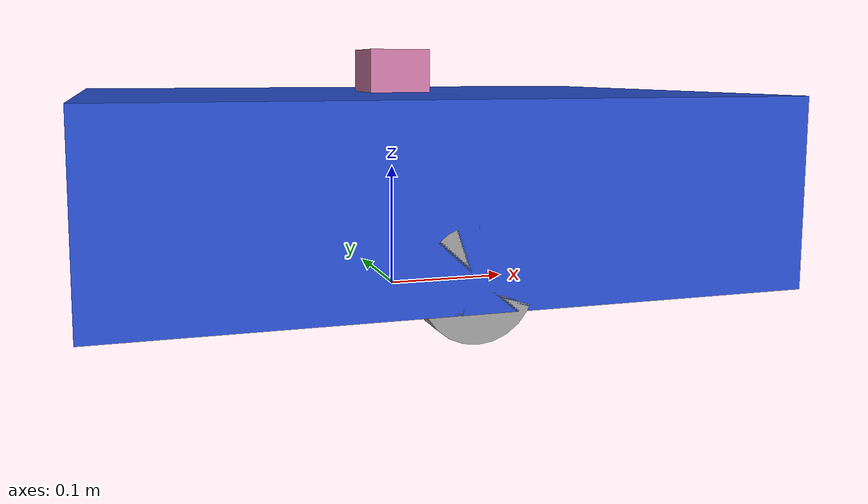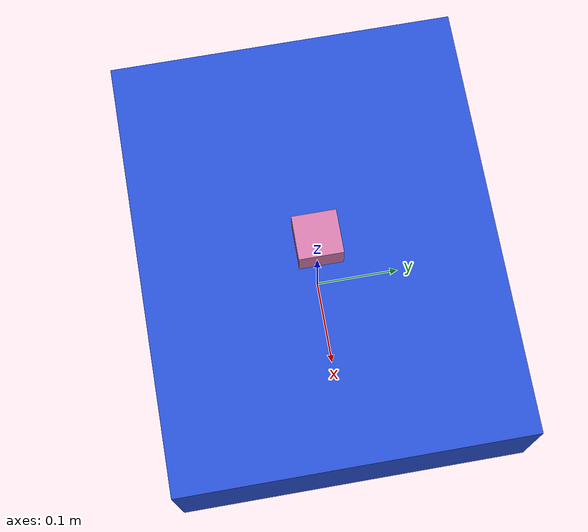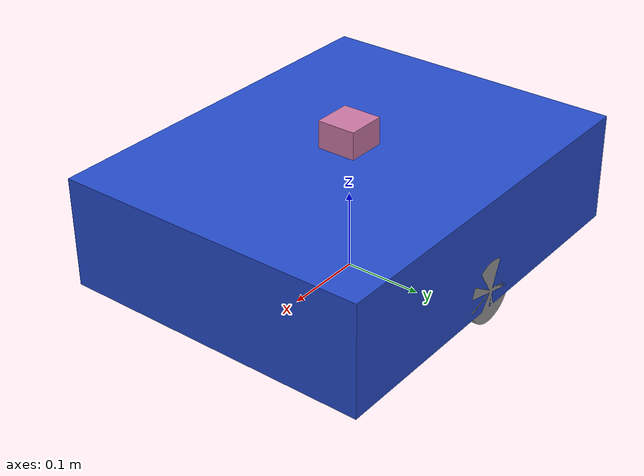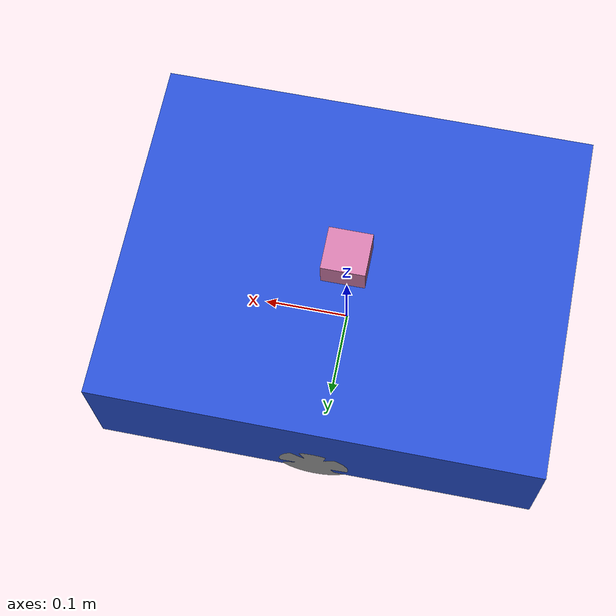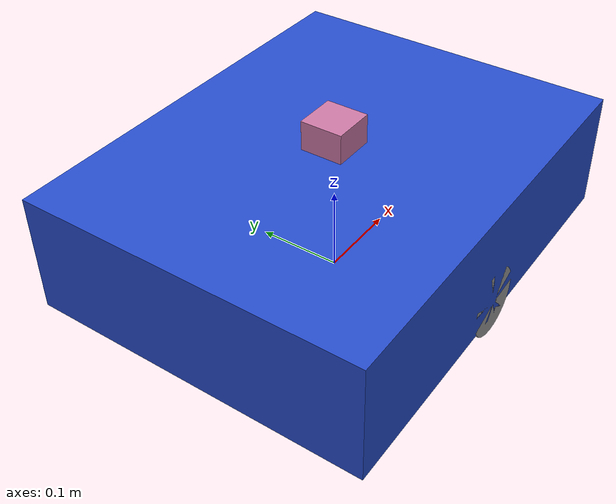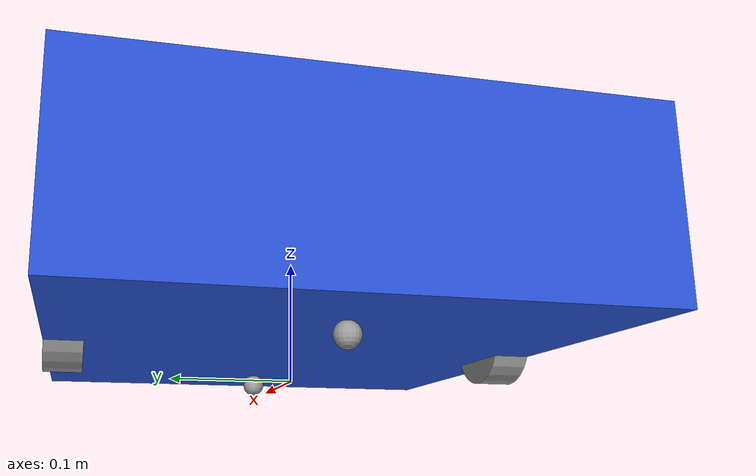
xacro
<?xml version="1.0"?>
<robot name="my_robot" xmlns:xacro="http://ros.org/wiki/xacro">

    <xacro:arg name="is_ignition" default= "true"/>

    <xacro:include filename="myrobot_control.xacro"/>
    <xacro:include filename="common_property.xacro"/>
    <xacro:include filename="mobile_base.xacro"/>
    <xacro:include filename="mobile_base_gazebo.xacro"/>
</robot>

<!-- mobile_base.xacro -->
<robot name="my_robot" xmlns:xacro="http://ros.org/wiki/xacro" >

    <xacro:property name="base_length" value="0.5" />
    <xacro:property name="base_width" value="0.4" />
    <xacro:property name="base_height" value="0.14" />
    <xacro:property name="wheel_radius" value="0.04" />
    <xacro:property name="wheel_length" value="0.03" />
    <xacro:property name="caster_wheel_radius" value="0.005" />

    <link name="base_footprint" />

    <link name="base_link">
        <visual>
            <geometry>
                <box size="${base_length} ${base_width} ${base_height}" />
            </geometry>
            <origin xyz="0 0 0" rpy="0 0 0" />
            <material name="blue" />
        </visual>
        <collision>
            <geometry>
                <box size="${base_length} ${base_width} ${base_height}" />
            </geometry>
            <origin xyz="0 0 0" rpy="0 0 0" />
        </collision>
        <xacro:box_inertia m="5.0" l="${base_length}" w="${base_width}" h="${base_height}"
                           xyz="0 0 0" rpy="0 0 0" />
    </link>

    <xacro:macro name="wheel_link" params="prefix">
        <link name="${prefix}_wheel_link">
            <visual>
                <geometry>
                    <cylinder radius="${wheel_radius}" length="${wheel_length}" />
                </geometry>
                <origin xyz="0 0 0" rpy="${pi / 2.0} 0 0" />
                <material name="grey" />
            </visual>
            <collision>
                <geometry>
                    <cylinder radius="${wheel_radius}" length="${wheel_length}" />
                </geometry>
                <origin xyz="0 0 0" rpy="${pi / 2.0} 0 0" />
            </collision>
            <xacro:cylinder_inertia m="0.5" r="${2*wheel_radius}" h="${2*wheel_length}"
                                    xyz="0 0 0" rpy="${pi / 2.0} 0 0" />
        </link>
    </xacro:macro>

    <xacro:wheel_link prefix="right" />
    <xacro:wheel_link prefix="left" />

    <link name="caster_wheel_link">
        <visual>
            <geometry>
                <sphere radius="${2*caster_wheel_radius}" />
            </geometry>
            <origin xyz="0 0 0" rpy="0 0 0" />
            <material name="grey" />
        </visual>
        <collision>
            <geometry>
                <sphere radius="${2*caster_wheel_radius}" />
            </geometry>
            <origin xyz="0 0 0" rpy="0 0 0" />
        </collision>
        <xacro:sphere_inertia m="0.5" r="${2*caster_wheel_radius}"
                              xyz="0 0 0" rpy="0 0 0" />
    </link>

    <link name="caster_wheel_link1">
        <visual>
            <geometry>
                <sphere radius="${2*caster_wheel_radius}" />
            </geometry>
            <origin xyz="0 0 0" rpy="0 0 0" />
            <material name="grey" />
        </visual>
        <collision>
            <geometry>
                <sphere radius="${2*caster_wheel_radius}" />
            </geometry>
            <origin xyz="0 0 0" rpy="0 0 0" />
        </collision>
        <xacro:sphere_inertia m="0.5" r="${2*caster_wheel_radius}"
                              xyz="0 0 0" rpy="0 0 0" />
    </link>

    <joint name="base_joint" type="fixed">
        <parent link="base_footprint" />
        <child link="base_link" />
        <origin xyz="0 0 ${0.023 + base_height/2.0}" rpy="0 0 0"/>
    </joint>

    <joint name="base_right_wheel_joint" type="continuous">
        <parent link="base_link" />
        <child link="right_wheel_link" />
        <origin xyz="0 ${-(base_width - wheel_length) / 2.0} -0.05" rpy="0 0 0" />
        <axis xyz="0 1 0" />
    </joint>

    <joint name="base_left_wheel_joint" type="continuous">
        <parent link="base_link" />
        <child link="left_wheel_link" />
        <origin xyz="0 ${(base_width - wheel_length) / 2.0} -0.05" rpy="0 0 0" />
        <axis xyz="0 1 0" />
    </joint>

    <joint name="base_caster_wheel_joint" type="fixed">
        <parent link="base_link" />
        <child link="caster_wheel_link" />
        <origin xyz="0.1611 0 ${-(base_height/ 2.0 + 0.009)}" rpy="0 0 0" />
    </joint>

    <joint name="base_caster_wheel_joint1" type="fixed">
        <parent link="base_link" />
        <child link="caster_wheel_link1" />
        <origin xyz="-0.1611 0 ${-(base_height/ 2.0 + 0.009)}" rpy="0 0 0" />
    </joint>

    <link name="imu_link">
        <inertial>
            <origin xyz="-0.00552433659106688 0.000168210391520346 0.000514000497342681" rpy="0 0 0" />
                <mass value="0.000528415362211671" />
                <inertia
                ixx="1.46176048428261E-08" ixy="1.40015117949421E-10" ixz="-1.99633872937403E-12"
                iyy="8.59662482954888E-09" iyz="7.52375112767959E-12"
                izz="2.30279421279312E-08" />
        </inertial>

        <visual>
            <geometry>
                <box size="0.05 0.05 0.05"/>
            </geometry>
            <origin xyz="0 0 0" rpy="0 0 0" />
        </visual>

        <collision>
            <geometry>
                <box size="0.05 0.05 0.05" />
            </geometry>
            <origin xyz="0 0 0" rpy="0 0 0" />
        </collision>
    </link>

    <joint name="imu_joint" type="fixed">
        <origin xyz="0 0 0.08" rpy="0 0 0" />
        <parent link="base_link" />
        <child link="imu_link" />
        <axis xyz="0 0 0" />
    </joint>
    <link name="laser_link">
        <inertial>
            <origin xyz="-0.011945780406062 -0.000381929217680526 -0.0170649378129477" rpy="0 0 0" />
                <mass value="0.073084435549317" />
                <inertia
                ixx="1.96074931730795E-05" ixy="-3.62091076640009E-07" ixz="4.28230084046735E-07"
                iyy="2.40983835136327E-05" iyz="1.50180909250652E-08"
                izz="4.14184164228595E-05" />
        </inertial>

        <visual>
            <geometry>
                <box size="0.05 0.05 0.05"/>
            </geometry>
            <origin xyz="0 0 0" rpy="0 0 0" />
        </visual>

        <collision>
            <geometry>
                <box size="0.1 0.1 0.05" />
            </geometry>
            <origin xyz="0 0 0" rpy="0 0 0" />
        </collision>

    </link>

    <joint name="laser_joint" type="fixed">
        <origin xyz="0 0 0.08" rpy="0 0 0" />
        <parent link="base_link" />
        <child link="laser_link" />
    </joint>

</robot>
